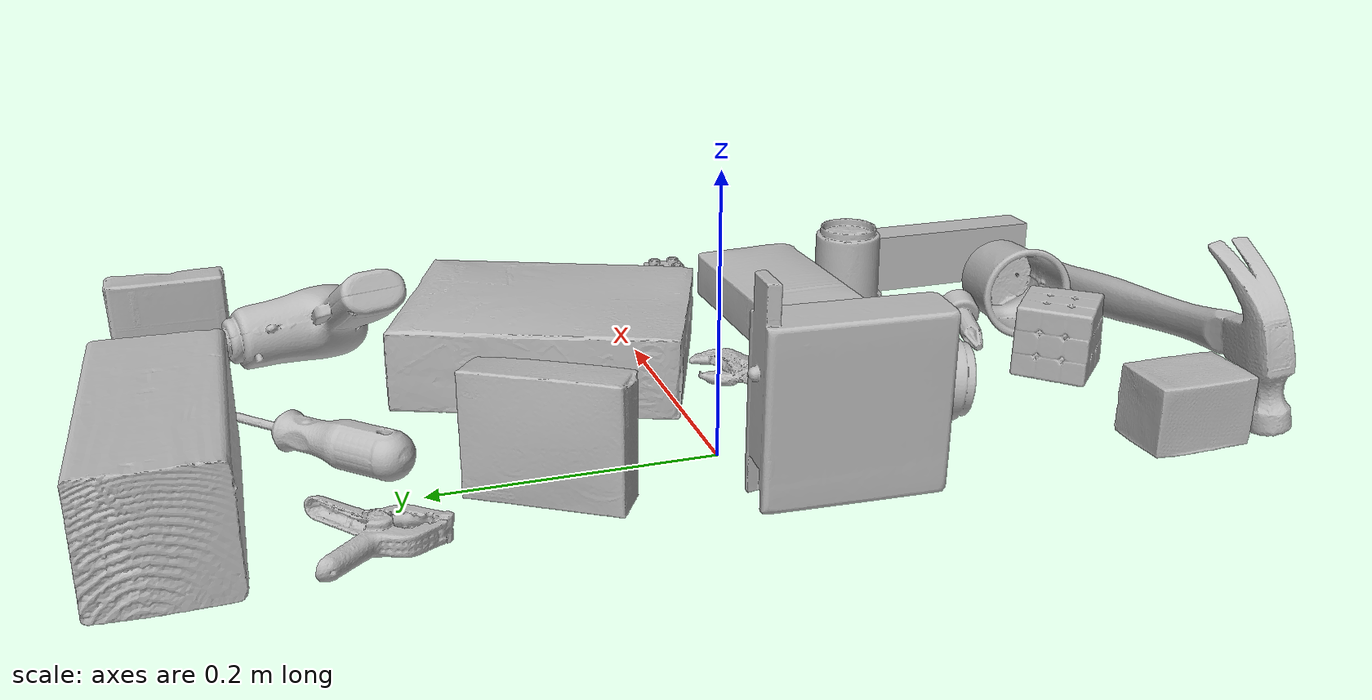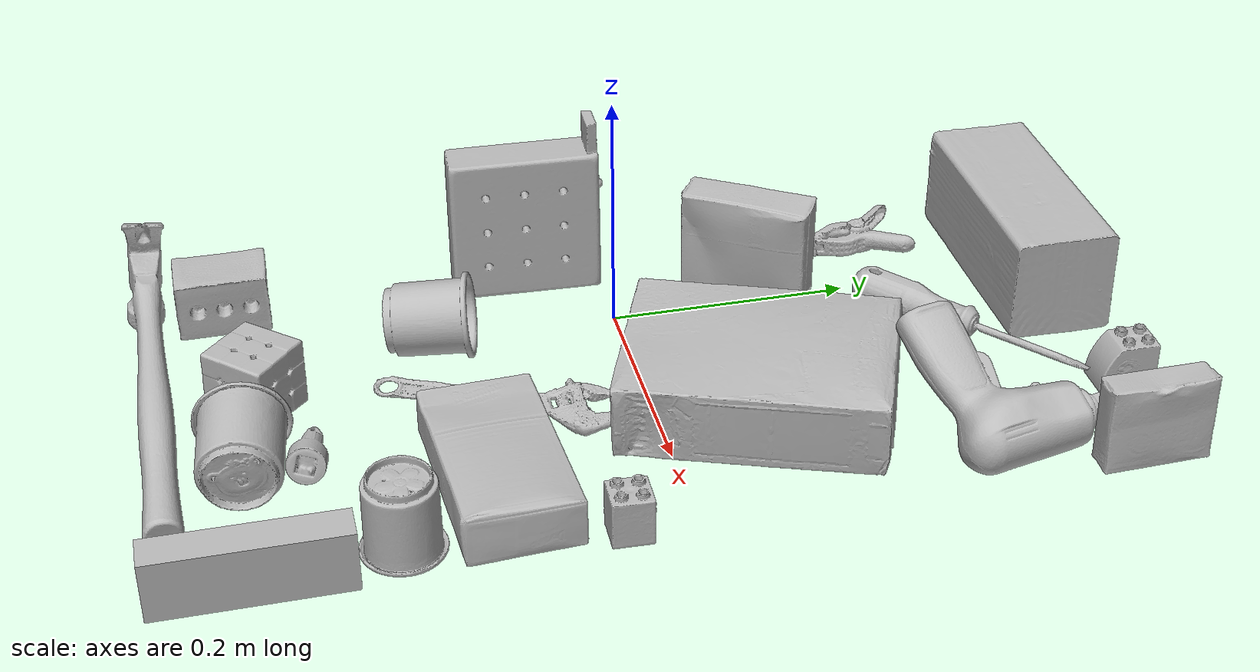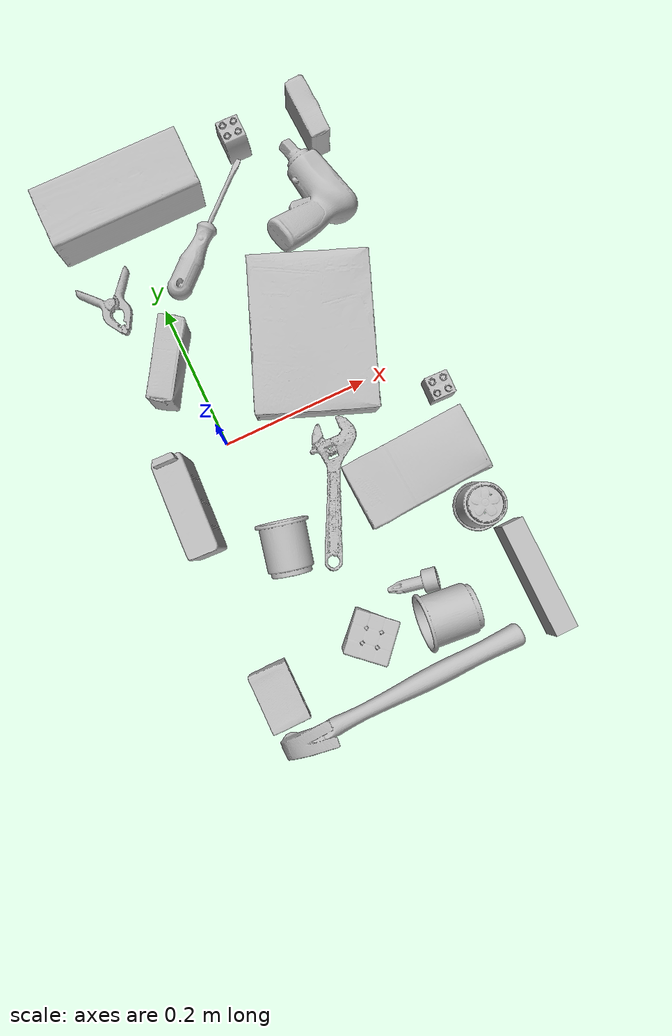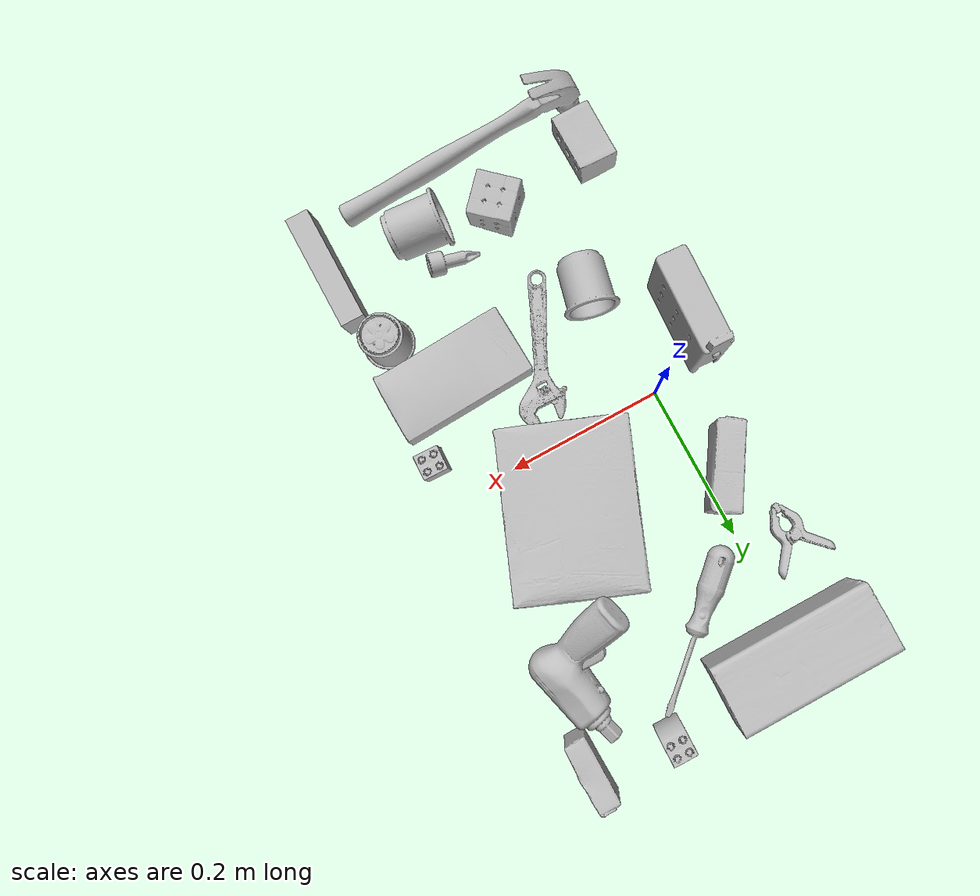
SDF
<sdf version="1.4">
  <world name="default">
    <light name="light1" type="point">
      <pose>0 0 1 0 0 0</pose>
      <diffuse>3 3 3 1</diffuse>
      <specular>3 3 3 1</specular>
    </light>
    <light name="light2" type="point">
      <pose>0 0.5 2 0 0 0</pose>
      <diffuse>1 1 1 1</diffuse>
      <specular>1 1 1 1</specular>
    </light>
    <light name="light3" type="point">
      <pose>0 0.5 2 0 0 0</pose>
      <diffuse>3 3 3 1</diffuse>
      <specular>3 3 3 1</specular>
    </light>
    <scene>
      <ambient>0.7 0.7 0.7</ambient>
    </scene>
    <model name="box21">
      <link name="link_box21">
        <collision name="default">
          <geometry>
            <mesh>
              <uri>model://cracker_box/collision_meshes/collision.obj</uri>
              <scale>1.0 1.0 1.0</scale>
            </mesh>
          </geometry>
          <surface>
            <friction>
              <ode>
                <mu>0.5</mu>
                <mu2>0.5</mu2>
              </ode>
            </friction>
          <contact>
        <ode>
            <max_vel>0</max_vel>
            <min_depth>0.0001</min_depth>
            <kp>1e8</kp>
        </ode>
    </contact></surface>
        </collision>
        <visual name="default">
          <geometry>
            <mesh>
              <uri>model://cracker_box/visual_meshes/visual.dae</uri>
              <scale>1.0 1.0 1.0</scale>
            </mesh>
          </geometry>
        </visual>
        <inertial>
          <mass>2.732837677001953</mass>
          <pose>0.000946416228543967 0.0002543424488976598 -0.0017029533628374338 -0.00031620734042352985 -0.011106490532052917 0.002546795466230165</pose>
          <inertia>
            <ixx>0.0069511193</ixx>
            <iyy>0.011477663</iyy>
            <izz>0.01637968</izz>
            <ixy>0</ixy>
            <ixz>0</ixz>
            <iyz>0</iyz>
          </inertia>
        </inertial>
      </link>
      <pose>0.16096244752407074 0.07985370606184006 0.03553149476647377 3.1371967179381124 -0.016544956733685615 1.1968947817412734</pose>
    </model>
    <model name="box22">
      <link name="link_box22">
        <collision name="default">
          <geometry>
            <mesh>
              <uri>model://jenga/collision_meshes/collision.obj</uri>
              <scale>1.0 1.0 1.0</scale>
            </mesh>
          </geometry>
          <surface>
            <friction>
              <ode>
                <mu>0.5</mu>
                <mu2>0.5</mu2>
              </ode>
            </friction>
          <contact>
        <ode>
            <max_vel>0</max_vel>
            <min_depth>0.0001</min_depth>
            <kp>1e8</kp>
        </ode>
    </contact></surface>
        </collision>
        <visual name="default">
          <geometry>
            <mesh>
              <uri>model://jenga/visual_meshes/visual.dae</uri>
              <scale>1.0 1.0 1.0</scale>
            </mesh>
          </geometry>
        </visual>
        <inertial>
          <mass>0.1563216596841812</mass>
          <pose>-2.502855807051674e-07 -0.00010250010382151231 -4.0923401684267446e-05 0.0 -7.34215461761844e-07 0.0</pose>
          <inertia>
            <ixx>4.3258e-05</ixx>
            <iyy>0.000293115</iyy>
            <izz>0.0003129252</izz>
            <ixy>0</ixy>
            <ixz>0</ixz>
            <iyz>0</iyz>
          </inertia>
        </inertial>
      </link>
      <pose>0.2845889627933502 -0.3238639235496521 0.024701936170458794 1.5774981691698013 -2.1450908081569882e-07 1.574017673060118</pose>
    </model>
    <model name="box23">
      <link name="link_box23">
        <collision name="default">
          <geometry>
            <mesh>
              <uri>model://pudding_box/collision_meshes/collision.obj</uri>
              <scale>1.0 1.0 1.0</scale>
            </mesh>
          </geometry>
          <surface>
            <friction>
              <ode>
                <mu>0.5</mu>
                <mu2>0.5</mu2>
              </ode>
            </friction>
          <contact>
        <ode>
            <max_vel>0</max_vel>
            <min_depth>0.0001</min_depth>
            <kp>1e8</kp>
        </ode>
    </contact></surface>
        </collision>
        <visual name="default">
          <geometry>
            <mesh>
              <uri>model://pudding_box/visual_meshes/visual.dae</uri>
              <scale>1.0 1.0 1.0</scale>
            </mesh>
          </geometry>
        </visual>
        <inertial>
          <mass>0.32993465662002563</mass>
          <pose>0.0004894821904599667 0.0008067885064519942 -0.0005188827635720372 0.005213102236317791 -0.0066038015122011 0.020079823288174207</pose>
          <inertia>
            <ixx>0.00037297411</ixx>
            <iyy>0.00025093966</iyy>
            <izz>0.0005507938</izz>
            <ixy>0</ixy>
            <ixz>0</ixz>
            <iyz>0</iyz>
          </inertia>
        </inertial>
      </link>
      <pose>-0.024303341284394264 0.12201463431119919 0.0445965938270092 0.006679359820778671 -1.5473124890518144 -0.5799214436851587</pose>
    </model>
    <model name="cup1">
      <link name="link_cup1">
        <collision name="default">
          <geometry>
            <mesh>
              <uri>model://c_cups/collision_meshes/collision.obj</uri>
              <scale>1.0 1.0 1.0</scale>
            </mesh>
          </geometry>
          <surface>
            <friction>
              <ode>
                <mu>0.5</mu>
                <mu2>0.5</mu2>
              </ode>
            </friction>
          <contact>
        <ode>
            <max_vel>0</max_vel>
            <min_depth>0.0001</min_depth>
            <kp>1e8</kp>
        </ode>
    </contact></surface>
        </collision>
        <visual name="default">
          <geometry>
            <mesh>
              <uri>model://c_cups/visual_meshes/visual.dae</uri>
              <scale>1.0 1.0 1.0</scale>
            </mesh>
          </geometry>
        </visual>
        <inertial>
          <mass>0.05159630998969078</mass>
          <pose>0.0007237254758365452 0.0020153908990323544 -0.001275097718462348 0.3021575981944983 0.01346171900925468 -0.08771841488334552</pose>
          <inertia>
            <ixx>3.8371487e-05</ixx>
            <iyy>3.7693397e-05</iyy>
            <izz>3.3934528e-05</izz>
            <ixy>0</ixy>
            <ixz>0</ixz>
            <iyz>0</iyz>
          </inertia>
        </inertial>
      </link>
      <pose>0.262449711561203 -0.21431441605091095 0.03345802426338196 -3.1415926341045926 3.51772656036838e-09 1.3467138116586983</pose>
    </model>
    <model name="cup2">
      <link name="link_cup2">
        <collision name="default">
          <geometry>
            <mesh>
              <uri>model://d_cups/collision_meshes/collision.obj</uri>
              <scale>1.0 1.0 1.0</scale>
            </mesh>
          </geometry>
          <surface>
            <friction>
              <ode>
                <mu>0.5</mu>
                <mu2>0.5</mu2>
              </ode>
            </friction>
          <contact>
        <ode>
            <max_vel>0</max_vel>
            <min_depth>0.0001</min_depth>
            <kp>1e8</kp>
        </ode>
    </contact></surface>
        </collision>
        <visual name="default">
          <geometry>
            <mesh>
              <uri>model://d_cups/visual_meshes/visual.dae</uri>
              <scale>1.0 1.0 1.0</scale>
            </mesh>
          </geometry>
        </visual>
        <inertial>
          <mass>0.029099034145474434</mass>
          <pose>0.0008068051538430154 0.0019117402844130993 -0.0022666510194540024 0.24013101341738077 -0.2470893725106806 0.5942204262094062</pose>
          <inertia>
            <ixx>2.436274e-05</ixx>
            <iyy>2.429223e-05</iyy>
            <izz>2.2052422e-05</izz>
            <ixy>0</ixy>
            <ixz>0</ixz>
            <iyz>0</iyz>
          </inertia>
        </inertial>
      </link>
      <pose>0.013515261933207512 -0.15674123167991638 0.03244728967547417 -1.4810608491710116 0.35128692676754186 -0.20008625011197456</pose>
    </model>
    <model name="box11">
      <link name="link_box11">
        <collision name="default">
          <geometry>
            <mesh>
              <uri>model://sugar_box/collision_meshes/collision.obj</uri>
              <scale>1.0 1.0 1.0</scale>
            </mesh>
          </geometry>
          <surface>
            <friction>
              <ode>
                <mu>0.5</mu>
                <mu2>0.5</mu2>
              </ode>
            </friction>
          <contact>
        <ode>
            <max_vel>0</max_vel>
            <min_depth>0.0001</min_depth>
            <kp>1e8</kp>
        </ode>
    </contact></surface>
        </collision>
        <visual name="default">
          <geometry>
            <mesh>
              <uri>model://sugar_box/visual_meshes/visual.dae</uri>
              <scale>1.0 1.0 1.0</scale>
            </mesh>
          </geometry>
        </visual>
        <inertial>
          <mass>0.6083751916885376</mass>
          <pose>0.0010343727190047503 3.849109634757042e-05 -0.00036364805418998003 -0.00040462662026216373 0.00105066363904409 0.002615379021562279</pose>
          <inertia>
            <ixx>0.0005068966</ixx>
            <iyy>0.0016383935</iyy>
            <izz>0.0019613528</izz>
            <ixy>0</ixy>
            <ixz>0</ixz>
            <iyz>0</iyz>
          </inertia>
        </inertial>
      </link>
      <pose>0.2097097933292389 -0.1349291205406189 0.022362403571605682 3.141270647089961 -0.025108441134849294 0.05438361789770739</pose>
    </model>
    <model name="box12">
      <link name="link_box12">
        <collision name="default">
          <geometry>
            <mesh>
              <uri>model://wood_block/collision_meshes/collision.obj</uri>
              <scale>1.0 1.0 1.0</scale>
            </mesh>
          </geometry>
          <surface>
            <friction>
              <ode>
                <mu>0.5</mu>
                <mu2>0.5</mu2>
              </ode>
            </friction>
          <contact>
        <ode>
            <max_vel>0</max_vel>
            <min_depth>0.0001</min_depth>
            <kp>1e8</kp>
        </ode>
    </contact></surface>
        </collision>
        <visual name="default">
          <geometry>
            <mesh>
              <uri>model://wood_block/visual_meshes/visual.dae</uri>
              <scale>1.0 1.0 1.0</scale>
            </mesh>
          </geometry>
        </visual>
        <inertial>
          <mass>1.904224157333374</mass>
          <pose>-5.813315510749817e-06 -0.000570809468626976 0.0002640858292579651 -0.05220878944738684 -0.005192694452018099 -0.006861378422653873</pose>
          <inertia>
            <ixx>0.00254814</ixx>
            <iyy>0.008049577</iyy>
            <izz>0.008019466</izz>
            <ixy>0</ixy>
            <ixz>0</ixz>
            <iyz>0</iyz>
          </inertia>
        </inertial>
      </link>
      <pose>0.008125250227749348 0.35496267676353455 0.04559160768985748 3.1414311091502474 -0.005752369578601762 3.1351137553983346</pose>
    </model>
    <model name="box13">
      <link name="link_box13">
        <collision name="default">
          <geometry>
            <mesh>
              <uri>model://gelatin_box/collision_meshes/collision.obj</uri>
              <scale>1.0 1.0 1.0</scale>
            </mesh>
          </geometry>
          <surface>
            <friction>
              <ode>
                <mu>0.5</mu>
                <mu2>0.5</mu2>
              </ode>
            </friction>
          <contact>
        <ode>
            <max_vel>0</max_vel>
            <min_depth>0.0001</min_depth>
            <kp>1e8</kp>
        </ode>
    </contact></surface>
        </collision>
        <visual name="default">
          <geometry>
            <mesh>
              <uri>model://gelatin_box/visual_meshes/visual.dae</uri>
              <scale>1.0 1.0 1.0</scale>
            </mesh>
          </geometry>
        </visual>
        <inertial>
          <mass>0.15982484817504883</mass>
          <pose>0.0004319618456065655 0.00011156871187267825 -0.0003640321083366871 -0.001050372093012012 -0.00475581868936722 0.016440559471878533</pose>
          <inertia>
            <ixx>0.000112823305</ixx>
            <iyy>8.0589096e-05</iyy>
            <izz>0.0001717422</izz>
            <ixy>0</ixy>
            <ixz>0</ixz>
            <iyz>0</iyz>
          </inertia>
        </inertial>
      </link>
      <pose>0.28536441922187805 0.3549165427684784 0.036444541066884995 0.32392857123619234 -1.5457599658932621 2.8367075968811437</pose>
    </model>
    <model name="box14">
      <link name="link_box14">
        <collision name="default">
          <geometry>
            <mesh>
              <uri>model://rubiks_cube/collision_meshes/collision.obj</uri>
              <scale>1.0 1.0 1.0</scale>
            </mesh>
          </geometry>
          <surface>
            <friction>
              <ode>
                <mu>0.5</mu>
                <mu2>0.5</mu2>
              </ode>
            </friction>
          <contact>
        <ode>
            <max_vel>0</max_vel>
            <min_depth>0.0001</min_depth>
            <kp>1e8</kp>
        </ode>
    </contact></surface>
        </collision>
        <visual name="default">
          <geometry>
            <mesh>
              <uri>model://rubiks_cube/visual_meshes/visual.dae</uri>
              <scale>1.0 1.0 1.0</scale>
            </mesh>
          </geometry>
        </visual>
        <inertial>
          <mass>0.19606205821037292</mass>
          <pose>2.6721043468569405e-05 5.256967051536776e-05 -7.264316536748083e-06 -0.05467227514375443 -0.09814085307594407 -0.03445353526761094</pose>
          <inertia>
            <ixx>0.00010833746</ixx>
            <iyy>0.000107832224</iyy>
            <izz>0.00010923522</izz>
            <ixy>0</ixy>
            <ixz>0</ixz>
            <iyz>0</iyz>
          </inertia>
        </inertial>
      </link>
      <pose>0.06156439706683159 -0.3022426962852478 0.02905971370637417 -3.1341397508779583 0.010892020391947348 2.3654984828028693</pose>
    </model>
    <model name="cup15">
      <link name="link_cup15">
        <collision name="default">
          <geometry>
            <mesh>
              <uri>model://e_cups/collision_meshes/collision.obj</uri>
              <scale>1.0 1.0 1.0</scale>
            </mesh>
          </geometry>
          <surface>
            <friction>
              <ode>
                <mu>0.5</mu>
                <mu2>0.5</mu2>
              </ode>
            </friction>
          <contact>
        <ode>
            <max_vel>0</max_vel>
            <min_depth>0.0001</min_depth>
            <kp>1e8</kp>
        </ode>
    </contact></surface>
        </collision>
        <visual name="default">
          <geometry>
            <mesh>
              <uri>model://e_cups/visual_meshes/visual.dae</uri>
              <scale>1.0 1.0 1.0</scale>
            </mesh>
          </geometry>
        </visual>
        <inertial>
          <mass>0.09305236488580704</mass>
          <pose>0.0011355740716680884 0.0028797851409763098 -0.003882972989231348 0.6952374393777071 0.08767548394821409 -0.5235242886817723</pose>
          <inertia>
            <ixx>8.204892e-05</ixx>
            <iyy>8.5752865e-05</iyy>
            <izz>7.844823e-05</izz>
            <ixy>0</ixy>
            <ixz>0</ixz>
            <iyz>0</iyz>
          </inertia>
        </inertial>
      </link>
      <pose>0.1628154218196869 -0.319731742143631 0.03465082868933678 -1.4844722137232365 -0.03567771298299741 1.4522329219800176</pose>
    </model>
    <model name="toy1">
      <link name="link_toy1">
        <collision name="default">
          <geometry>
            <mesh>
              <uri>model://foam_brick/collision_meshes/collision.obj</uri>
              <scale>1.0 1.0 1.0</scale>
            </mesh>
          </geometry>
          <surface>
            <friction>
              <ode>
                <mu>0.5</mu>
                <mu2>0.5</mu2>
              </ode>
            </friction>
          <contact>
        <ode>
            <max_vel>0</max_vel>
            <min_depth>0.0001</min_depth>
            <kp>1e8</kp>
        </ode>
    </contact></surface>
        </collision>
        <visual name="default">
          <geometry>
            <mesh>
              <uri>model://foam_brick/visual_meshes/visual.dae</uri>
              <scale>1.0 1.0 1.0</scale>
            </mesh>
          </geometry>
        </visual>
        <inertial>
          <mass>0.27397871017456055</mass>
          <pose>-0.0002522472059354186 0.0003458441060502082 -0.00025321010616607964 -0.2940210021807357 0.01727444677850634 -0.0007449878009638903</pose>
          <inertia>
            <ixx>0.00011967903</ixx>
            <iyy>0.00019107372</iyy>
            <izz>0.00019350204</izz>
            <ixy>0</ixy>
            <ixz>0</ixz>
            <iyz>0</iyz>
          </inertia>
        </inertial>
      </link>
      <pose>-0.07283148169517517 -0.31837955117225647 0.025910694152116776 1.582820484724966 -0.0003756107265769475 1.5784899868228306</pose>
    </model>
    <model name="toy2">
      <link name="link_toy2">
        <collision name="default">
          <geometry>
            <mesh>
              <uri>model://b_toy_airplane/collision_meshes/collision.obj</uri>
              <scale>1.0 1.0 1.0</scale>
            </mesh>
          </geometry>
          <surface>
            <friction>
              <ode>
                <mu>0.5</mu>
                <mu2>0.5</mu2>
              </ode>
            </friction>
          <contact>
        <ode>
            <max_vel>0</max_vel>
            <min_depth>0.0001</min_depth>
            <kp>1e8</kp>
        </ode>
    </contact></surface>
        </collision>
        <visual name="default">
          <geometry>
            <mesh>
              <uri>model://b_toy_airplane/visual_meshes/visual.dae</uri>
              <scale>1.0 1.0 1.0</scale>
            </mesh>
          </geometry>
        </visual>
        <inertial>
          <mass>0.24932990968227386</mass>
          <pose>0.005081362556666136 0.004015582613646984 0.00954306498169899 -0.04001809188182278 -0.04022184417958596 -0.5601502893643007</pose>
          <inertia>
            <ixx>0.0004628856</ixx>
            <iyy>0.00018501986</iyy>
            <izz>0.00057587575</izz>
            <ixy>0</ixy>
            <ixz>0</ixz>
            <iyz>0</iyz>
          </inertia>
        </inertial>
      </link>
      <pose>0.24679751694202423 0.24193085730075836 0.049151718616485596 -2.5845194781493763 -0.0008269264652325633 1.8092501246047707</pose>
    </model>
    <model name="toy3">
      <link name="link_toy3">
        <collision name="default">
          <geometry>
            <mesh>
              <uri>model://f_lego_duplo/collision_meshes/collision.obj</uri>
              <scale>1.0 1.0 1.0</scale>
            </mesh>
          </geometry>
          <surface>
            <friction>
              <ode>
                <mu>0.5</mu>
                <mu2>0.5</mu2>
              </ode>
            </friction>
          <contact>
        <ode>
            <max_vel>0</max_vel>
            <min_depth>0.0001</min_depth>
            <kp>1e8</kp>
        </ode>
    </contact></surface>
        </collision>
        <visual name="default">
          <geometry>
            <mesh>
              <uri>model://f_lego_duplo/visual_meshes/visual.dae</uri>
              <scale>1.0 1.0 1.0</scale>
            </mesh>
          </geometry>
        </visual>
        <inertial>
          <mass>0.027739444747567177</mass>
          <pose>2.369416324654594e-05 0.00013393194240052253 0.0018837876850739121 0.02983859902212722 -0.014425048030447486 -0.6756637170693943</pose>
          <inertia>
            <ixx>5.8614983e-06</ixx>
            <iyy>5.913718e-06</iyy>
            <izz>5.0880294e-06</izz>
            <ixy>0</ixy>
            <ixz>0</ixz>
            <iyz>0</iyz>
          </inertia>
        </inertial>
      </link>
      <pose>0.28315916657447815 -0.052596330642700195 0.021870994940400124 3.047250316950397e-06 3.648984747798372e-06 -0.030330176259739848</pose>
    </model>
    <model name="toy4">
      <link name="link_toy4">
        <collision name="default">
          <geometry>
            <mesh>
              <uri>model://d_toy_airplane/collision_meshes/collision.obj</uri>
              <scale>1.0 1.0 1.0</scale>
            </mesh>
          </geometry>
          <surface>
            <friction>
              <ode>
                <mu>0.5</mu>
                <mu2>0.5</mu2>
              </ode>
            </friction>
          <contact>
        <ode>
            <max_vel>0</max_vel>
            <min_depth>0.0001</min_depth>
            <kp>1e8</kp>
        </ode>
    </contact></surface>
        </collision>
        <visual name="default">
          <geometry>
            <mesh>
              <uri>model://d_toy_airplane/visual_meshes/visual.dae</uri>
              <scale>1.0 1.0 1.0</scale>
            </mesh>
          </geometry>
        </visual>
        <inertial>
          <mass>0.018694162368774414</mass>
          <pose>9.410315396962687e-05 -5.80932610318996e-05 -0.011728095822036266 0.0002670379770250361 0.004678992469792915 0.5194762078456472</pose>
          <inertia>
            <ixx>5.6041463e-06</ixx>
            <iyy>5.6083722e-06</iyy>
            <izz>1.6919282e-06</izz>
            <ixy>0</ixy>
            <ixz>0</ixz>
            <iyz>0</iyz>
          </inertia>
        </inertial>
      </link>
      <pose>0.14039519429206848 -0.2682502865791321 0.011632458306849003 -1.793816680025029 0.4057833729905773 1.2959529181492444</pose>
    </model>
    <model name="toy5">
      <link name="link_toy5">
        <collision name="default">
          <geometry>
            <mesh>
              <uri>model://d_lego_duplo/collision_meshes/collision.obj</uri>
              <scale>1.0 1.0 1.0</scale>
            </mesh>
          </geometry>
          <surface>
            <friction>
              <ode>
                <mu>0.5</mu>
                <mu2>0.5</mu2>
              </ode>
            </friction>
          <contact>
        <ode>
            <max_vel>0</max_vel>
            <min_depth>0.0001</min_depth>
            <kp>1e8</kp>
        </ode>
    </contact></surface>
        </collision>
        <visual name="default">
          <geometry>
            <mesh>
              <uri>model://d_lego_duplo/visual_meshes/visual.dae</uri>
              <scale>1.0 1.0 1.0</scale>
            </mesh>
          </geometry>
        </visual>
        <inertial>
          <mass>0.04560890793800354</mass>
          <pose>0.0028305635787546635 0.00016366137424483895 0.0008589806966483593 0.08010848326521293 -0.38355231288211744 0.0010296590748680565</pose>
          <inertia>
            <ixx>8.829212e-06</ixx>
            <iyy>1.253105e-05</iyy>
            <izz>1.2084434e-05</izz>
            <ixy>0</ixy>
            <ixz>0</ixz>
            <iyz>0</iyz>
          </inertia>
        </inertial>
      </link>
      <pose>0.18319620192050934 0.37568676471710205 0.021739747375249863 -4.100770389314627e-05 -1.0182676861156813e-05 1.5631670546064178</pose>
    </model>
    <model name="toy6">
      <link name="link_toy6">
        <collision name="default">
          <geometry>
            <mesh>
              <uri>model://nine_hole_peg_test/collision_meshes/collision.obj</uri>
              <scale>1.0 1.0 1.0</scale>
            </mesh>
          </geometry>
          <surface>
            <friction>
              <ode>
                <mu>0.5</mu>
                <mu2>0.5</mu2>
              </ode>
            </friction>
          <contact>
        <ode>
            <max_vel>0</max_vel>
            <min_depth>0.0001</min_depth>
            <kp>1e8</kp>
        </ode>
    </contact></surface>
        </collision>
        <visual name="default">
          <geometry>
            <mesh>
              <uri>model://nine_hole_peg_test/visual_meshes/visual.dae</uri>
              <scale>1.0 1.0 1.0</scale>
            </mesh>
          </geometry>
        </visual>
        <inertial>
          <mass>0.9848376512527466</mass>
          <pose>-0.004617386031895876 -0.009647614322602749 2.646068787726108e-05 -0.0014666785927196467 0.0007194180015025765 -0.6342414580933873</pose>
          <inertia>
            <ixx>0.0015399556</ixx>
            <iyy>0.0014378404</iyy>
            <izz>0.0026984566</izz>
            <ixy>0</ixy>
            <ixz>0</ixz>
            <iyz>0</iyz>
          </inertia>
        </inertial>
      </link>
      <pose>-0.07457412034273148 -0.056191906332969666 0.0740172415971756 1.5585129155926036 -0.007629015683220281 1.527174055376047</pose>
    </model>
    <model name="hardware1">
      <link name="link_hardware1">
        <collision name="default">
          <geometry>
            <mesh>
              <uri>model://hammer/collision_meshes/collision.obj</uri>
              <scale>1.0 1.0 1.0</scale>
            </mesh>
          </geometry>
          <surface>
            <friction>
              <ode>
                <mu>0.5</mu>
                <mu2>0.5</mu2>
              </ode>
            </friction>
          <contact>
        <ode>
            <max_vel>0</max_vel>
            <min_depth>0.0001</min_depth>
            <kp>1e8</kp>
        </ode>
    </contact></surface>
        </collision>
        <visual name="default">
          <geometry>
            <mesh>
              <uri>model://hammer/visual_meshes/visual.dae</uri>
              <scale>1.0 1.0 1.0</scale>
            </mesh>
          </geometry>
        </visual>
        <inertial>
          <mass>0.19812075793743134</mass>
          <pose>0.009415780194103718 -0.011892358772456646 -0.00012350631004665047 0.023155553199567438 -0.004792165144826806 -0.012760319769687977</pose>
          <inertia>
            <ixx>8.4865314e-05</ixx>
            <iyy>0.0022996028</iyy>
            <izz>0.0023654876</izz>
            <ixy>0</ixy>
            <ixz>0</ixz>
            <iyz>0</iyz>
          </inertia>
        </inertial>
      </link>
      <pose>0.0612921342253685 -0.377677857875824 0.05389249697327614 1.642791791101529 -0.14380105917669167 3.1360487636694883</pose>
    </model>
    <model name="hardware2">
      <link name="link_hardware2">
        <collision name="default">
          <geometry>
            <mesh>
              <uri>model://medium_clamp/collision_meshes/collision.obj</uri>
              <scale>1.0 1.0 1.0</scale>
            </mesh>
          </geometry>
          <surface>
            <friction>
              <ode>
                <mu>0.5</mu>
                <mu2>0.5</mu2>
              </ode>
            </friction>
          <contact>
        <ode>
            <max_vel>0</max_vel>
            <min_depth>0.0001</min_depth>
            <kp>1e8</kp>
        </ode>
    </contact></surface>
        </collision>
        <visual name="default">
          <geometry>
            <mesh>
              <uri>model://medium_clamp/visual_meshes/visual.dae</uri>
              <scale>1.0 1.0 1.0</scale>
            </mesh>
          </geometry>
        </visual>
        <inertial>
          <mass>0.022759946063160896</mass>
          <pose>0.005390991922467947 0.00039532387745566666 -0.0001222159044118598 -0.0012269199415174078 0.0025845019151957355 0.03820777718195871</pose>
          <inertia>
            <ixx>6.200628e-06</ixx>
            <iyy>9.023669e-06</iyy>
            <izz>1.3899154e-05</izz>
            <ixy>0</ixy>
            <ixz>0</ixz>
            <iyz>0</iyz>
          </inertia>
        </inertial>
      </link>
      <pose>-0.06068382412195206 0.23615199327468872 0.013533152639865875 0.07741244653435286 0.08543987142482097 -1.5568639794533425</pose>
    </model>
    <model name="hardware3">
      <link name="link_hardware3">
        <collision name="default">
          <geometry>
            <mesh>
              <uri>model://flat_screwdriver/collision_meshes/collision.obj</uri>
              <scale>1.0 1.0 1.0</scale>
            </mesh>
          </geometry>
          <surface>
            <friction>
              <ode>
                <mu>0.5</mu>
                <mu2>0.5</mu2>
              </ode>
            </friction>
          <contact>
        <ode>
            <max_vel>0</max_vel>
            <min_depth>0.0001</min_depth>
            <kp>1e8</kp>
        </ode>
    </contact></surface>
        </collision>
        <visual name="default">
          <geometry>
            <mesh>
              <uri>model://flat_screwdriver/visual_meshes/visual.dae</uri>
              <scale>1.0 1.0 1.0</scale>
            </mesh>
          </geometry>
        </visual>
        <inertial>
          <mass>0.09131896495819092</mass>
          <pose>-0.0489187091588974 -0.0006576800951734185 -0.0006140916375443339 -0.5615616021105532 -0.003233725851923771 0.0069822762955213</pose>
          <inertia>
            <ixx>1.0789267e-05</ixx>
            <iyy>0.00013697217</iyy>
            <izz>0.00013690875</izz>
            <ixy>0</ixy>
            <ixz>0</ixz>
            <iyz>0</iyz>
          </inertia>
        </inertial>
      </link>
      <pose>0.09695427864789963 0.2772030532360077 0.015338561497628689 -0.2144101328849287 0.04069612143519323 0.7288032464566406</pose>
    </model>
    <model name="hardware4">
      <link name="link_hardware4">
        <collision name="default">
          <geometry>
            <mesh>
              <uri>model://adjustable_wrench/collision_meshes/collision.obj</uri>
              <scale>1.0 1.0 1.0</scale>
            </mesh>
          </geometry>
          <surface>
            <friction>
              <ode>
                <mu>0.5</mu>
                <mu2>0.5</mu2>
              </ode>
            </friction>
          <contact>
        <ode>
            <max_vel>0</max_vel>
            <min_depth>0.0001</min_depth>
            <kp>1e8</kp>
        </ode>
    </contact></surface>
        </collision>
        <visual name="default">
          <geometry>
            <mesh>
              <uri>model://adjustable_wrench/visual_meshes/visual.dae</uri>
              <scale>1.0 1.0 1.0</scale>
            </mesh>
          </geometry>
        </visual>
        <inertial>
          <mass>0.023054517805576324</mass>
          <pose>0.03740980476140976 -0.0028968877159059048 -0.0011149226920679212 -0.01447335734168526 0.006656027895675122 -0.010954173130845575</pose>
          <inertia>
            <ixx>4.7184403e-06</ixx>
            <iyy>5.5223813e-05</iyy>
            <izz>5.969163e-05</izz>
            <ixy>0</ixy>
            <ixz>0</ixz>
            <iyz>0</iyz>
          </inertia>
        </inertial>
      </link>
      <pose>0.09872116893529892 -0.11339676380157471 0.006078436970710754 0.04741435179792638 -0.02976986009986336 1.1093290823812885</pose>
    </model>
  <physics type="ode">
      <max_contacts>50</max_contacts>
      <ode>
        <solver>
          <type>quick</type>
          <iters>75</iters>
        </solver>
        <constraints>
          <contact_max_correcting_vel>0</contact_max_correcting_vel>
          <contact_surface_layer>0</contact_surface_layer>
        </constraints>
      </ode>
    </physics></world>
</sdf>
